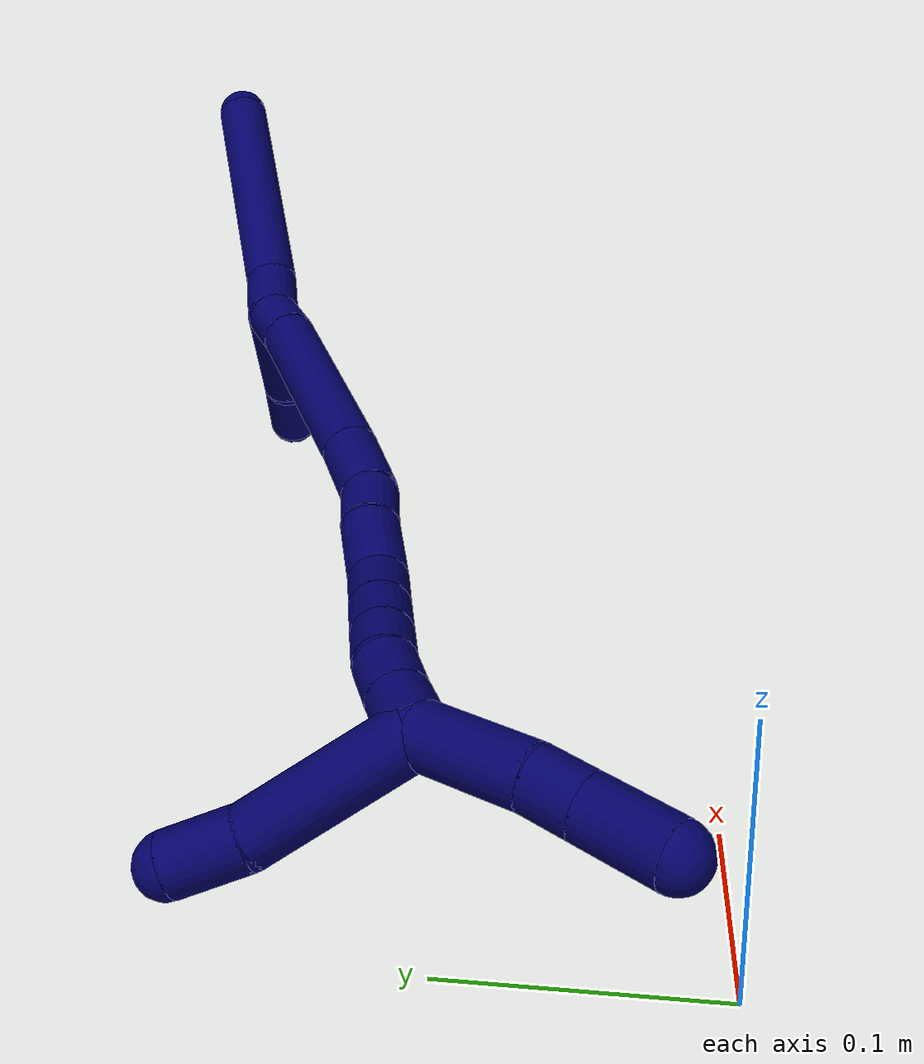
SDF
<sdf version="1.7">
 <world name="default">
  <model name="7">
   <static>0</static>
   <link name="7">
    <collision name="collision-cylinder-e_1_2_8">
     <pose>0.007215 0.000493 0.011572 -0.042567 0.55715 -0.012176</pose>
     <geometry><cylinder><radius>0.0125</radius><length>0.027291</length></cylinder></geometry>
     <surface>
      <friction><ode><mu>1.16</mu><mu2>1.16</mu2><slip1>0</slip1><slip2>0</slip2></ode></friction>
      <contact><ode><kp>1e+06</kp><kd>1</kd><max_vel>0</max_vel><min_depth>0.001</min_depth></ode></contact>
     </surface>
    </collision>
    <visual name="visual-cylinder-e_1_2_8">
     <pose>0.007215 0.000493 0.011572 -0.042567 0.55715 -0.012176</pose>
     <geometry><cylinder><radius>0.0125</radius><length>0.027291</length></cylinder></geometry>
     <material><ambient>0.003922 0 0.403922 1</ambient></material>
    </visual>
    <collision name="collision-cylinder-e_2_8_6">
     <pose>0.046555 -0.01044 0.074151 0.220352 0.551057 0.062531</pose>
     <geometry><cylinder><radius>0.0125</radius><length>0.122709</length></cylinder></geometry>
     <surface>
      <friction><ode><mu>1.16</mu><mu2>1.16</mu2><slip1>0</slip1><slip2>0</slip2></ode></friction>
      <contact><ode><kp>1e+06</kp><kd>1</kd><max_vel>0</max_vel><min_depth>0.001</min_depth></ode></contact>
     </surface>
    </collision>
    <visual name="visual-cylinder-e_2_8_6">
     <pose>0.046555 -0.01044 0.074151 0.220352 0.551057 0.062531</pose>
     <geometry><cylinder><radius>0.0125</radius><length>0.122709</length></cylinder></geometry>
     <material><ambient>0.003922 0 0.403922 1</ambient></material>
    </visual>
    <collision name="collision-cylinder-e_1_2_9">
     <pose>-0.006251 0.025113 0.006971 -1.30004 -0.235403 0.17931</pose>
     <geometry><cylinder><radius>0.0125</radius><length>0.053603</length></cylinder></geometry>
     <surface>
      <friction><ode><mu>1.16</mu><mu2>1.16</mu2><slip1>0</slip1><slip2>0</slip2></ode></friction>
      <contact><ode><kp>1e+06</kp><kd>1</kd><max_vel>0</max_vel><min_depth>0.001</min_depth></ode></contact>
     </surface>
    </collision>
    <visual name="visual-cylinder-e_1_2_9">
     <pose>-0.006251 0.025113 0.006971 -1.30004 -0.235403 0.17931</pose>
     <geometry><cylinder><radius>0.0125</radius><length>0.053603</length></cylinder></geometry>
     <material><ambient>0.003922 0 0.403922 1</ambient></material>
    </visual>
    <collision name="collision-cylinder-e_2_9_5">
     <pose>-0.015403 0.070315 0.025175 -1.06092 -0.125387 0.073607</pose>
     <geometry><cylinder><radius>0.0125</radius><length>0.046397</length></cylinder></geometry>
     <surface>
      <friction><ode><mu>1.16</mu><mu2>1.16</mu2><slip1>0</slip1><slip2>0</slip2></ode></friction>
      <contact><ode><kp>1e+06</kp><kd>1</kd><max_vel>0</max_vel><min_depth>0.001</min_depth></ode></contact>
     </surface>
    </collision>
    <visual name="visual-cylinder-e_2_9_5">
     <pose>-0.015403 0.070315 0.025175 -1.06092 -0.125387 0.073607</pose>
     <geometry><cylinder><radius>0.0125</radius><length>0.046397</length></cylinder></geometry>
     <material><ambient>0.003922 0 0.403922 1</ambient></material>
    </visual>
    <collision name="collision-cylinder-e_1_2_10">
     <pose>-0.001881 -5.2e-05 -0.010411 3.1366 -0.178708 -3.08586</pose>
     <geometry><cylinder><radius>0.0125</radius><length>0.021158</length></cylinder></geometry>
     <surface>
      <friction><ode><mu>1.16</mu><mu2>1.16</mu2><slip1>0</slip1><slip2>0</slip2></ode></friction>
      <contact><ode><kp>1e+06</kp><kd>1</kd><max_vel>0</max_vel><min_depth>0.001</min_depth></ode></contact>
     </surface>
    </collision>
    <visual name="visual-cylinder-e_1_2_10">
     <pose>-0.001881 -5.2e-05 -0.010411 3.1366 -0.178708 -3.08586</pose>
     <geometry><cylinder><radius>0.0125</radius><length>0.021158</length></cylinder></geometry>
     <material><ambient>0.003922 0 0.403922 1</ambient></material>
    </visual>
    <collision name="collision-cylinder-e_2_10_11">
     <pose>-0.016491 0.000796 -0.064457 -3.12098 -0.283806 2.99753</pose>
     <geometry><cylinder><radius>0.0125</radius><length>0.090927</length></cylinder></geometry>
     <surface>
      <friction><ode><mu>1.16</mu><mu2>1.16</mu2><slip1>0</slip1><slip2>0</slip2></ode></friction>
      <contact><ode><kp>1e+06</kp><kd>1</kd><max_vel>0</max_vel><min_depth>0.001</min_depth></ode></contact>
     </surface>
    </collision>
    <visual name="visual-cylinder-e_2_10_11">
     <pose>-0.016491 0.000796 -0.064457 -3.12098 -0.283806 2.99753</pose>
     <geometry><cylinder><radius>0.0125</radius><length>0.090927</length></cylinder></geometry>
     <material><ambient>0.003922 0 0.403922 1</ambient></material>
    </visual>
    <collision name="collision-cylinder-e_3_11_12">
     <pose>-0.034419 0.000616 -0.123654 3.07237 -0.321626 -2.72098</pose>
     <geometry><cylinder><radius>0.0125</radius><length>0.032885</length></cylinder></geometry>
     <surface>
      <friction><ode><mu>1.16</mu><mu2>1.16</mu2><slip1>0</slip1><slip2>0</slip2></ode></friction>
      <contact><ode><kp>1e+06</kp><kd>1</kd><max_vel>0</max_vel><min_depth>0.001</min_depth></ode></contact>
     </surface>
    </collision>
    <visual name="visual-cylinder-e_3_11_12">
     <pose>-0.034419 0.000616 -0.123654 3.07237 -0.321626 -2.72098</pose>
     <geometry><cylinder><radius>0.0125</radius><length>0.032885</length></cylinder></geometry>
     <material><ambient>0.003922 0 0.403922 1</ambient></material>
    </visual>
    <collision name="collision-cylinder-e_4_12_13">
     <pose>-0.045346 -0.002569 -0.148387 2.9158 -0.546892 -2.37329</pose>
     <geometry><cylinder><radius>0.0125</radius><length>0.022032</length></cylinder></geometry>
     <surface>
      <friction><ode><mu>1.16</mu><mu2>1.16</mu2><slip1>0</slip1><slip2>0</slip2></ode></friction>
      <contact><ode><kp>1e+06</kp><kd>1</kd><max_vel>0</max_vel><min_depth>0.001</min_depth></ode></contact>
     </surface>
    </collision>
    <visual name="visual-cylinder-e_4_12_13">
     <pose>-0.045346 -0.002569 -0.148387 2.9158 -0.546892 -2.37329</pose>
     <geometry><cylinder><radius>0.0125</radius><length>0.022032</length></cylinder></geometry>
     <material><ambient>0.003922 0 0.403922 1</ambient></material>
    </visual>
    <collision name="collision-cylinder-e_5_13_14">
     <pose>-0.058497 -0.005729 -0.170982 3.06332 -0.503766 -2.83962</pose>
     <geometry><cylinder><radius>0.0125</radius><length>0.030754</length></cylinder></geometry>
     <surface>
      <friction><ode><mu>1.16</mu><mu2>1.16</mu2><slip1>0</slip1><slip2>0</slip2></ode></friction>
      <contact><ode><kp>1e+06</kp><kd>1</kd><max_vel>0</max_vel><min_depth>0.001</min_depth></ode></contact>
     </surface>
    </collision>
    <visual name="visual-cylinder-e_5_13_14">
     <pose>-0.058497 -0.005729 -0.170982 3.06332 -0.503766 -2.83962</pose>
     <geometry><cylinder><radius>0.0125</radius><length>0.030754</length></cylinder></geometry>
     <material><ambient>0.003922 0 0.403922 1</ambient></material>
    </visual>
    <collision name="collision-cylinder-e_6_14_15">
     <pose>-0.070271 -0.01072 -0.193645 2.73859 -0.408827 -1.58555</pose>
     <geometry><cylinder><radius>0.0125</radius><length>0.021888</length></cylinder></geometry>
     <surface>
      <friction><ode><mu>1.16</mu><mu2>1.16</mu2><slip1>0</slip1><slip2>0</slip2></ode></friction>
      <contact><ode><kp>1e+06</kp><kd>1</kd><max_vel>0</max_vel><min_depth>0.001</min_depth></ode></contact>
     </surface>
    </collision>
    <visual name="visual-cylinder-e_6_14_15">
     <pose>-0.070271 -0.01072 -0.193645 2.73859 -0.408827 -1.58555</pose>
     <geometry><cylinder><radius>0.0125</radius><length>0.021888</length></cylinder></geometry>
     <material><ambient>0.003922 0 0.403922 1</ambient></material>
    </visual>
    <collision name="collision-cylinder-e_7_15_16">
     <pose>-0.078517 -0.018233 -0.211389 2.74374 -0.399545 -1.57516</pose>
     <geometry><cylinder><radius>0.0125</radius><length>0.020033</length></cylinder></geometry>
     <surface>
      <friction><ode><mu>1.16</mu><mu2>1.16</mu2><slip1>0</slip1><slip2>0</slip2></ode></friction>
      <contact><ode><kp>1e+06</kp><kd>1</kd><max_vel>0</max_vel><min_depth>0.001</min_depth></ode></contact>
     </surface>
    </collision>
    <visual name="visual-cylinder-e_7_15_16">
     <pose>-0.078517 -0.018233 -0.211389 2.74374 -0.399545 -1.57516</pose>
     <geometry><cylinder><radius>0.0125</radius><length>0.020033</length></cylinder></geometry>
     <material><ambient>0.003922 0 0.403922 1</ambient></material>
    </visual>
    <collision name="collision-cylinder-e_8_16_17">
     <pose>-0.086229 -0.025466 -0.228403 2.73547 -0.390837 -1.53141</pose>
     <geometry><cylinder><radius>0.0125</radius><length>0.020031</length></cylinder></geometry>
     <surface>
      <friction><ode><mu>1.16</mu><mu2>1.16</mu2><slip1>0</slip1><slip2>0</slip2></ode></friction>
      <contact><ode><kp>1e+06</kp><kd>1</kd><max_vel>0</max_vel><min_depth>0.001</min_depth></ode></contact>
     </surface>
    </collision>
    <visual name="visual-cylinder-e_8_16_17">
     <pose>-0.086229 -0.025466 -0.228403 2.73547 -0.390837 -1.53141</pose>
     <geometry><cylinder><radius>0.0125</radius><length>0.020031</length></cylinder></geometry>
     <material><ambient>0.003922 0 0.403922 1</ambient></material>
    </visual>
    <collision name="collision-cylinder-e_9_17_18">
     <pose>-0.092967 -0.030965 -0.246339 2.94882 -0.295313 -1.98882</pose>
     <geometry><cylinder><radius>0.0125</radius><length>0.020081</length></cylinder></geometry>
     <surface>
      <friction><ode><mu>1.16</mu><mu2>1.16</mu2><slip1>0</slip1><slip2>0</slip2></ode></friction>
      <contact><ode><kp>1e+06</kp><kd>1</kd><max_vel>0</max_vel><min_depth>0.001</min_depth></ode></contact>
     </surface>
    </collision>
    <visual name="visual-cylinder-e_9_17_18">
     <pose>-0.092967 -0.030965 -0.246339 2.94882 -0.295313 -1.98882</pose>
     <geometry><cylinder><radius>0.0125</radius><length>0.020081</length></cylinder></geometry>
     <material><ambient>0.003922 0 0.403922 1</ambient></material>
    </visual>
    <collision name="collision-cylinder-e_10_18_1">
     <pose>-0.098186 -0.03478 -0.265407 2.93955 -0.229306 -1.69802</pose>
     <geometry><cylinder><radius>0.0125</radius><length>0.020211</length></cylinder></geometry>
     <surface>
      <friction><ode><mu>1.16</mu><mu2>1.16</mu2><slip1>0</slip1><slip2>0</slip2></ode></friction>
      <contact><ode><kp>1e+06</kp><kd>1</kd><max_vel>0</max_vel><min_depth>0.001</min_depth></ode></contact>
     </surface>
    </collision>
    <visual name="visual-cylinder-e_10_18_1">
     <pose>-0.098186 -0.03478 -0.265407 2.93955 -0.229306 -1.69802</pose>
     <geometry><cylinder><radius>0.0125</radius><length>0.020211</length></cylinder></geometry>
     <material><ambient>0.003922 0 0.403922 1</ambient></material>
    </visual>
    <collision name="collision-cylinder-e_1_1_19">
     <pose>-0.133379 -0.035408 -0.263819 -0.119336 -1.23965 0.085213</pose>
     <geometry><cylinder><radius>0.0125</radius><length>0.069571</length></cylinder></geometry>
     <surface>
      <friction><ode><mu>1.16</mu><mu2>1.16</mu2><slip1>0</slip1><slip2>0</slip2></ode></friction>
      <contact><ode><kp>1e+06</kp><kd>1</kd><max_vel>0</max_vel><min_depth>0.001</min_depth></ode></contact>
     </surface>
    </collision>
    <visual name="visual-cylinder-e_1_1_19">
     <pose>-0.133379 -0.035408 -0.263819 -0.119336 -1.23965 0.085213</pose>
     <geometry><cylinder><radius>0.0125</radius><length>0.069571</length></cylinder></geometry>
     <material><ambient>0.003922 0 0.403922 1</ambient></material>
    </visual>
    <collision name="collision-cylinder-e_2_19_4">
     <pose>-0.179626 -0.035408 -0.24542 0.185525 -1.07072 -0.110248</pose>
     <geometry><cylinder><radius>0.0125</radius><length>0.030429</length></cylinder></geometry>
     <surface>
      <friction><ode><mu>1.16</mu><mu2>1.16</mu2><slip1>0</slip1><slip2>0</slip2></ode></friction>
      <contact><ode><kp>1e+06</kp><kd>1</kd><max_vel>0</max_vel><min_depth>0.001</min_depth></ode></contact>
     </surface>
    </collision>
    <visual name="visual-cylinder-e_2_19_4">
     <pose>-0.179626 -0.035408 -0.24542 0.185525 -1.07072 -0.110248</pose>
     <geometry><cylinder><radius>0.0125</radius><length>0.030429</length></cylinder></geometry>
     <material><ambient>0.003922 0 0.403922 1</ambient></material>
    </visual>
    <collision name="collision-cylinder-e_1_1_20">
     <pose>-0.09249 -0.034018 -0.296275 -3.01337 0.357425 -2.45865</pose>
     <geometry><cylinder><radius>0.0125</radius><length>0.045692</length></cylinder></geometry>
     <surface>
      <friction><ode><mu>1.16</mu><mu2>1.16</mu2><slip1>0</slip1><slip2>0</slip2></ode></friction>
      <contact><ode><kp>1e+06</kp><kd>1</kd><max_vel>0</max_vel><min_depth>0.001</min_depth></ode></contact>
     </surface>
    </collision>
    <visual name="visual-cylinder-e_1_1_20">
     <pose>-0.09249 -0.034018 -0.296275 -3.01337 0.357425 -2.45865</pose>
     <geometry><cylinder><radius>0.0125</radius><length>0.045692</length></cylinder></geometry>
     <material><ambient>0.003922 0 0.403922 1</ambient></material>
    </visual>
    <collision name="collision-cylinder-e_2_20_21">
     <pose>-0.081979 -0.029389 -0.327272 -2.95024 0.247828 -1.82856</pose>
     <geometry><cylinder><radius>0.0125</radius><length>0.020533</length></cylinder></geometry>
     <surface>
      <friction><ode><mu>1.16</mu><mu2>1.16</mu2><slip1>0</slip1><slip2>0</slip2></ode></friction>
      <contact><ode><kp>1e+06</kp><kd>1</kd><max_vel>0</max_vel><min_depth>0.001</min_depth></ode></contact>
     </surface>
    </collision>
    <visual name="visual-cylinder-e_2_20_21">
     <pose>-0.081979 -0.029389 -0.327272 -2.95024 0.247828 -1.82856</pose>
     <geometry><cylinder><radius>0.0125</radius><length>0.020533</length></cylinder></geometry>
     <material><ambient>0.003922 0 0.403922 1</ambient></material>
    </visual>
    <collision name="collision-cylinder-e_3_21_3">
     <pose>-0.075561 -0.025937 -0.3534 -3.04661 0.233039 -2.37016</pose>
     <geometry><cylinder><radius>0.0125</radius><length>0.033775</length></cylinder></geometry>
     <surface>
      <friction><ode><mu>1.16</mu><mu2>1.16</mu2><slip1>0</slip1><slip2>0</slip2></ode></friction>
      <contact><ode><kp>1e+06</kp><kd>1</kd><max_vel>0</max_vel><min_depth>0.001</min_depth></ode></contact>
     </surface>
    </collision>
    <visual name="visual-cylinder-e_3_21_3">
     <pose>-0.075561 -0.025937 -0.3534 -3.04661 0.233039 -2.37016</pose>
     <geometry><cylinder><radius>0.0125</radius><length>0.033775</length></cylinder></geometry>
     <material><ambient>0.003922 0 0.403922 1</ambient></material>
    </visual>
    <collision name="collision-sphere-3">
     <pose>-0.071661 -0.024379 -0.369757 0 -0 0</pose>
     <geometry><sphere><radius>0.0125</radius></sphere></geometry>
     <surface>
      <friction><ode><mu>1.16</mu><mu2>1.16</mu2><slip1>0</slip1><slip2>0</slip2></ode></friction>
      <contact><ode><kp>1e+06</kp><kd>1</kd><max_vel>0</max_vel><min_depth>0.001</min_depth></ode></contact>
     </surface>
    </collision>
    <visual name="visual-sphere-3">
     <pose>-0.071661 -0.024379 -0.369757 0 -0 0</pose>
     <geometry><sphere><radius>0.0125</radius></sphere></geometry>
     <material><ambient>0.003922 0 0.403922 1</ambient></material>
    </visual>
    <collision name="collision-sphere-21">
     <pose>-0.079461 -0.027496 -0.337044 0 -0 0</pose>
     <geometry><sphere><radius>0.0125</radius></sphere></geometry>
     <surface>
      <friction><ode><mu>1.16</mu><mu2>1.16</mu2><slip1>0</slip1><slip2>0</slip2></ode></friction>
      <contact><ode><kp>1e+06</kp><kd>1</kd><max_vel>0</max_vel><min_depth>0.001</min_depth></ode></contact>
     </surface>
    </collision>
    <visual name="visual-sphere-21">
     <pose>-0.079461 -0.027496 -0.337044 0 -0 0</pose>
     <geometry><sphere><radius>0.0125</radius></sphere></geometry>
     <material><ambient>0.003922 0 0.403922 1</ambient></material>
    </visual>
    <collision name="collision-sphere-20">
     <pose>-0.084497 -0.031282 -0.317501 0 -0 0</pose>
     <geometry><sphere><radius>0.0125</radius></sphere></geometry>
     <surface>
      <friction><ode><mu>1.16</mu><mu2>1.16</mu2><slip1>0</slip1><slip2>0</slip2></ode></friction>
      <contact><ode><kp>1e+06</kp><kd>1</kd><max_vel>0</max_vel><min_depth>0.001</min_depth></ode></contact>
     </surface>
    </collision>
    <visual name="visual-sphere-20">
     <pose>-0.084497 -0.031282 -0.317501 0 -0 0</pose>
     <geometry><sphere><radius>0.0125</radius></sphere></geometry>
     <material><ambient>0.003922 0 0.403922 1</ambient></material>
    </visual>
    <collision name="collision-sphere-4">
     <pose>-0.192978 -0.036753 -0.23825 0 -0 0</pose>
     <geometry><sphere><radius>0.0125</radius></sphere></geometry>
     <surface>
      <friction><ode><mu>1.16</mu><mu2>1.16</mu2><slip1>0</slip1><slip2>0</slip2></ode></friction>
      <contact><ode><kp>1e+06</kp><kd>1</kd><max_vel>0</max_vel><min_depth>0.001</min_depth></ode></contact>
     </surface>
    </collision>
    <visual name="visual-sphere-4">
     <pose>-0.192978 -0.036753 -0.23825 0 -0 0</pose>
     <geometry><sphere><radius>0.0125</radius></sphere></geometry>
     <material><ambient>0.003922 0 0.403922 1</ambient></material>
    </visual>
    <collision name="collision-sphere-10">
     <pose>-0.003761 -0.000104 -0.020821 0 -0 0</pose>
     <geometry><sphere><radius>0.0125</radius></sphere></geometry>
     <surface>
      <friction><ode><mu>1.16</mu><mu2>1.16</mu2><slip1>0</slip1><slip2>0</slip2></ode></friction>
      <contact><ode><kp>1e+06</kp><kd>1</kd><max_vel>0</max_vel><min_depth>0.001</min_depth></ode></contact>
     </surface>
    </collision>
    <visual name="visual-sphere-10">
     <pose>-0.003761 -0.000104 -0.020821 0 -0 0</pose>
     <geometry><sphere><radius>0.0125</radius></sphere></geometry>
     <material><ambient>0.003922 0 0.403922 1</ambient></material>
    </visual>
    <collision name="collision-sphere-5">
     <pose>-0.018304 0.090403 0.036408 0 -0 0</pose>
     <geometry><sphere><radius>0.0125</radius></sphere></geometry>
     <surface>
      <friction><ode><mu>1.16</mu><mu2>1.16</mu2><slip1>0</slip1><slip2>0</slip2></ode></friction>
      <contact><ode><kp>1e+06</kp><kd>1</kd><max_vel>0</max_vel><min_depth>0.001</min_depth></ode></contact>
     </surface>
    </collision>
    <visual name="visual-sphere-5">
     <pose>-0.018304 0.090403 0.036408 0 -0 0</pose>
     <geometry><sphere><radius>0.0125</radius></sphere></geometry>
     <material><ambient>0.003922 0 0.403922 1</ambient></material>
    </visual>
    <collision name="collision-sphere-6">
     <pose>0.07868 -0.021865 0.125159 0 -0 0</pose>
     <geometry><sphere><radius>0.0125</radius></sphere></geometry>
     <surface>
      <friction><ode><mu>1.16</mu><mu2>1.16</mu2><slip1>0</slip1><slip2>0</slip2></ode></friction>
      <contact><ode><kp>1e+06</kp><kd>1</kd><max_vel>0</max_vel><min_depth>0.001</min_depth></ode></contact>
     </surface>
    </collision>
    <visual name="visual-sphere-6">
     <pose>0.07868 -0.021865 0.125159 0 -0 0</pose>
     <geometry><sphere><radius>0.0125</radius></sphere></geometry>
     <material><ambient>0.003922 0 0.403922 1</ambient></material>
    </visual>
    <collision name="collision-sphere-9">
     <pose>-0.012502 0.050226 0.013941 0 -0 0</pose>
     <geometry><sphere><radius>0.0125</radius></sphere></geometry>
     <surface>
      <friction><ode><mu>1.16</mu><mu2>1.16</mu2><slip1>0</slip1><slip2>0</slip2></ode></friction>
      <contact><ode><kp>1e+06</kp><kd>1</kd><max_vel>0</max_vel><min_depth>0.001</min_depth></ode></contact>
     </surface>
    </collision>
    <visual name="visual-sphere-9">
     <pose>-0.012502 0.050226 0.013941 0 -0 0</pose>
     <geometry><sphere><radius>0.0125</radius></sphere></geometry>
     <material><ambient>0.003922 0 0.403922 1</ambient></material>
    </visual>
    <collision name="collision-sphere-2">
     <geometry><sphere><radius>0.0125</radius></sphere></geometry>
     <surface>
      <friction><ode><mu>1.16</mu><mu2>1.16</mu2><slip1>0</slip1><slip2>0</slip2></ode></friction>
      <contact><ode><kp>1e+06</kp><kd>1</kd><max_vel>0</max_vel><min_depth>0.001</min_depth></ode></contact>
     </surface>
    </collision>
    <visual name="visual-sphere-2">
     <geometry><sphere><radius>0.0125</radius></sphere></geometry>
     <material><ambient>0.003922 0 0.403922 1</ambient></material>
    </visual>
    <collision name="collision-sphere-19">
     <pose>-0.166274 -0.034062 -0.25259 0 -0 0</pose>
     <geometry><sphere><radius>0.0125</radius></sphere></geometry>
     <surface>
      <friction><ode><mu>1.16</mu><mu2>1.16</mu2><slip1>0</slip1><slip2>0</slip2></ode></friction>
      <contact><ode><kp>1e+06</kp><kd>1</kd><max_vel>0</max_vel><min_depth>0.001</min_depth></ode></contact>
     </surface>
    </collision>
    <visual name="visual-sphere-19">
     <pose>-0.166274 -0.034062 -0.25259 0 -0 0</pose>
     <geometry><sphere><radius>0.0125</radius></sphere></geometry>
     <material><ambient>0.003922 0 0.403922 1</ambient></material>
    </visual>
    <collision name="collision-sphere-8">
     <pose>0.014431 0.000986 0.023143 0 -0 0</pose>
     <geometry><sphere><radius>0.0125</radius></sphere></geometry>
     <surface>
      <friction><ode><mu>1.16</mu><mu2>1.16</mu2><slip1>0</slip1><slip2>0</slip2></ode></friction>
      <contact><ode><kp>1e+06</kp><kd>1</kd><max_vel>0</max_vel><min_depth>0.001</min_depth></ode></contact>
     </surface>
    </collision>
    <visual name="visual-sphere-8">
     <pose>0.014431 0.000986 0.023143 0 -0 0</pose>
     <geometry><sphere><radius>0.0125</radius></sphere></geometry>
     <material><ambient>0.003922 0 0.403922 1</ambient></material>
    </visual>
    <collision name="collision-sphere-11">
     <pose>-0.029222 0.001695 -0.108092 0 -0 0</pose>
     <geometry><sphere><radius>0.0125</radius></sphere></geometry>
     <surface>
      <friction><ode><mu>1.16</mu><mu2>1.16</mu2><slip1>0</slip1><slip2>0</slip2></ode></friction>
      <contact><ode><kp>1e+06</kp><kd>1</kd><max_vel>0</max_vel><min_depth>0.001</min_depth></ode></contact>
     </surface>
    </collision>
    <visual name="visual-sphere-11">
     <pose>-0.029222 0.001695 -0.108092 0 -0 0</pose>
     <geometry><sphere><radius>0.0125</radius></sphere></geometry>
     <material><ambient>0.003922 0 0.403922 1</ambient></material>
    </visual>
    <collision name="collision-sphere-12">
     <pose>-0.039617 -0.000463 -0.139216 0 -0 0</pose>
     <geometry><sphere><radius>0.0125</radius></sphere></geometry>
     <surface>
      <friction><ode><mu>1.16</mu><mu2>1.16</mu2><slip1>0</slip1><slip2>0</slip2></ode></friction>
      <contact><ode><kp>1e+06</kp><kd>1</kd><max_vel>0</max_vel><min_depth>0.001</min_depth></ode></contact>
     </surface>
    </collision>
    <visual name="visual-sphere-12">
     <pose>-0.039617 -0.000463 -0.139216 0 -0 0</pose>
     <geometry><sphere><radius>0.0125</radius></sphere></geometry>
     <material><ambient>0.003922 0 0.403922 1</ambient></material>
    </visual>
    <collision name="collision-sphere-13">
     <pose>-0.051074 -0.004676 -0.157557 0 -0 0</pose>
     <geometry><sphere><radius>0.0125</radius></sphere></geometry>
     <surface>
      <friction><ode><mu>1.16</mu><mu2>1.16</mu2><slip1>0</slip1><slip2>0</slip2></ode></friction>
      <contact><ode><kp>1e+06</kp><kd>1</kd><max_vel>0</max_vel><min_depth>0.001</min_depth></ode></contact>
     </surface>
    </collision>
    <visual name="visual-sphere-13">
     <pose>-0.051074 -0.004676 -0.157557 0 -0 0</pose>
     <geometry><sphere><radius>0.0125</radius></sphere></geometry>
     <material><ambient>0.003922 0 0.403922 1</ambient></material>
    </visual>
    <collision name="collision-sphere-14">
     <pose>-0.06592 -0.006781 -0.184408 0 -0 0</pose>
     <geometry><sphere><radius>0.0125</radius></sphere></geometry>
     <surface>
      <friction><ode><mu>1.16</mu><mu2>1.16</mu2><slip1>0</slip1><slip2>0</slip2></ode></friction>
      <contact><ode><kp>1e+06</kp><kd>1</kd><max_vel>0</max_vel><min_depth>0.001</min_depth></ode></contact>
     </surface>
    </collision>
    <visual name="visual-sphere-14">
     <pose>-0.06592 -0.006781 -0.184408 0 -0 0</pose>
     <geometry><sphere><radius>0.0125</radius></sphere></geometry>
     <material><ambient>0.003922 0 0.403922 1</ambient></material>
    </visual>
    <collision name="collision-sphere-15">
     <pose>-0.074621 -0.014658 -0.202883 0 -0 0</pose>
     <geometry><sphere><radius>0.0125</radius></sphere></geometry>
     <surface>
      <friction><ode><mu>1.16</mu><mu2>1.16</mu2><slip1>0</slip1><slip2>0</slip2></ode></friction>
      <contact><ode><kp>1e+06</kp><kd>1</kd><max_vel>0</max_vel><min_depth>0.001</min_depth></ode></contact>
     </surface>
    </collision>
    <visual name="visual-sphere-15">
     <pose>-0.074621 -0.014658 -0.202883 0 -0 0</pose>
     <geometry><sphere><radius>0.0125</radius></sphere></geometry>
     <material><ambient>0.003922 0 0.403922 1</ambient></material>
    </visual>
    <collision name="collision-sphere-16">
     <pose>-0.082414 -0.021808 -0.219896 0 -0 0</pose>
     <geometry><sphere><radius>0.0125</radius></sphere></geometry>
     <surface>
      <friction><ode><mu>1.16</mu><mu2>1.16</mu2><slip1>0</slip1><slip2>0</slip2></ode></friction>
      <contact><ode><kp>1e+06</kp><kd>1</kd><max_vel>0</max_vel><min_depth>0.001</min_depth></ode></contact>
     </surface>
    </collision>
    <visual name="visual-sphere-16">
     <pose>-0.082414 -0.021808 -0.219896 0 -0 0</pose>
     <geometry><sphere><radius>0.0125</radius></sphere></geometry>
     <material><ambient>0.003922 0 0.403922 1</ambient></material>
    </visual>
    <collision name="collision-sphere-17">
     <pose>-0.090045 -0.029125 -0.236911 0 -0 0</pose>
     <geometry><sphere><radius>0.0125</radius></sphere></geometry>
     <surface>
      <friction><ode><mu>1.16</mu><mu2>1.16</mu2><slip1>0</slip1><slip2>0</slip2></ode></friction>
      <contact><ode><kp>1e+06</kp><kd>1</kd><max_vel>0</max_vel><min_depth>0.001</min_depth></ode></contact>
     </surface>
    </collision>
    <visual name="visual-sphere-17">
     <pose>-0.090045 -0.029125 -0.236911 0 -0 0</pose>
     <geometry><sphere><radius>0.0125</radius></sphere></geometry>
     <material><ambient>0.003922 0 0.403922 1</ambient></material>
    </visual>
    <collision name="collision-sphere-18">
     <pose>-0.095889 -0.032805 -0.255766 0 -0 0</pose>
     <geometry><sphere><radius>0.0125</radius></sphere></geometry>
     <surface>
      <friction><ode><mu>1.16</mu><mu2>1.16</mu2><slip1>0</slip1><slip2>0</slip2></ode></friction>
      <contact><ode><kp>1e+06</kp><kd>1</kd><max_vel>0</max_vel><min_depth>0.001</min_depth></ode></contact>
     </surface>
    </collision>
    <visual name="visual-sphere-18">
     <pose>-0.095889 -0.032805 -0.255766 0 -0 0</pose>
     <geometry><sphere><radius>0.0125</radius></sphere></geometry>
     <material><ambient>0.003922 0 0.403922 1</ambient></material>
    </visual>
    <collision name="collision-sphere-1">
     <pose>-0.100483 -0.036755 -0.275048 0 -0 0</pose>
     <geometry><sphere><radius>0.0125</radius></sphere></geometry>
     <surface>
      <friction><ode><mu>1.16</mu><mu2>1.16</mu2><slip1>0</slip1><slip2>0</slip2></ode></friction>
      <contact><ode><kp>1e+06</kp><kd>1</kd><max_vel>0</max_vel><min_depth>0.001</min_depth></ode></contact>
     </surface>
    </collision>
    <visual name="visual-sphere-1">
     <pose>-0.100483 -0.036755 -0.275048 0 -0 0</pose>
     <geometry><sphere><radius>0.0125</radius></sphere></geometry>
     <material><ambient>0.003922 0 0.403922 1</ambient></material>
    </visual>
    <inertial>
     <pose>-0.043341 -0.007746 -0.118791 0 -0 0</pose>
     <mass>0.75</mass>
     <inertia>
      <ixx>8.2e-05</ixx>
      <ixy>0</ixy>
      <ixz>0</ixz>
      <iyy>0.000295</iyy>
      <iyz>0</iyz>
      <izz>-3.5e-05</izz>
     </inertia>
    </inertial>
   </link>
   <pose>0.306084 0.214289 0.150864 -1.32612 -0.651675 -0.972258</pose>
  </model>
 </world>
</sdf>
